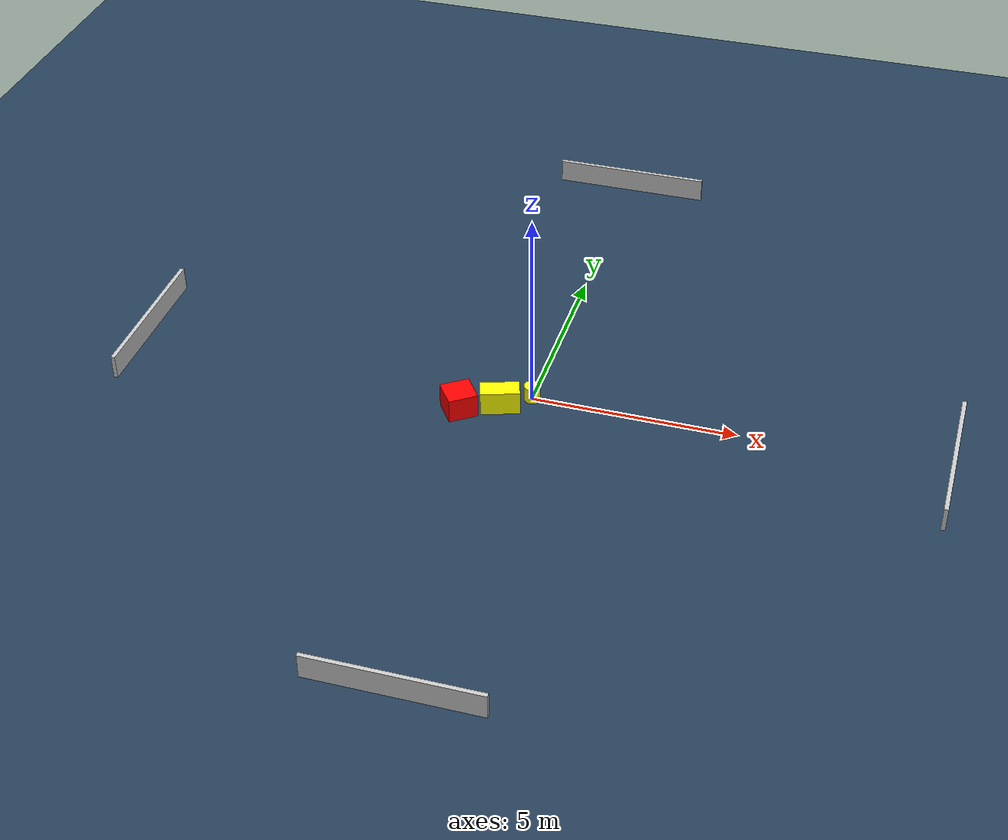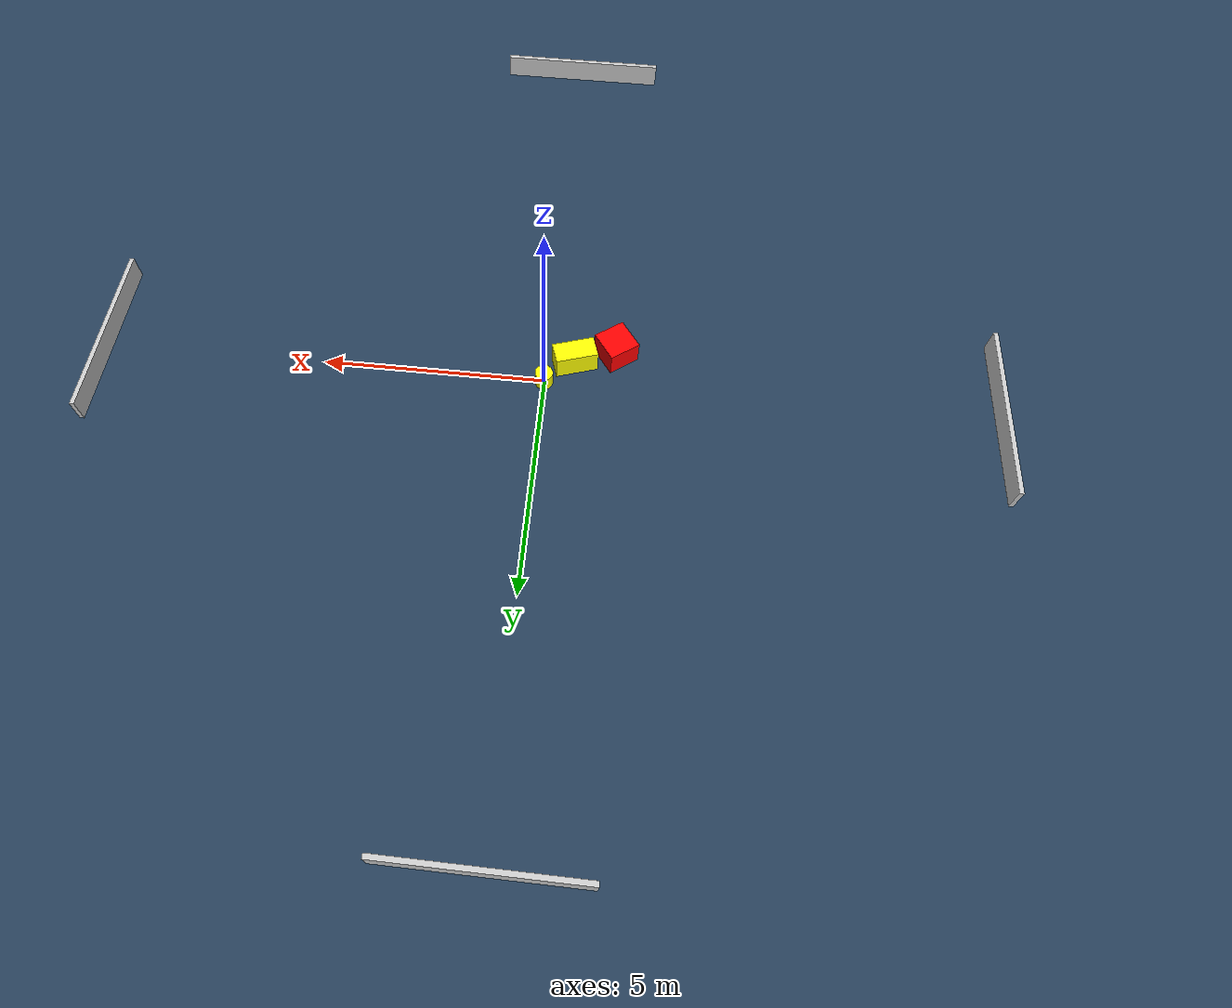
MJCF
<?xml version="1.0" ?>
<mujoco model="generated_environment">
  <option timestep="0.01" integrator="RK4" cone="elliptic"/>
  <default>
    <geom density="1"/>
  </default>
  <asset>
    <texture builtin="gradient" height="3072" name="skybox" rgb1="0.3 0.5 0.7" rgb2="0 0 0" type="skybox" width="512"/>
    <texture builtin="checker" height="300" name="groundplane" rgb1="0.2 0.3 0.4" rgb2="0.1 0.2 0.3" type="2d" width="300"/>
    <material name="groundplane" reflectance="0.2" texrepeat="5 5" texture="groundplane"/>
  </asset>
  <worldbody>
    <light dir="0 0 -1" directional="true" pos="0 0 1.5"/>
    <geom condim="3" friction="0.5 0.005 0.001" material="groundplane" name="floor" pos="0 0 0" size="0 0 0.05" type="plane"/>
    <body name="walls">
      <geom name="wall_1" condim="4" pos="-10.0 0.0 0.3" rgba="0.800000011920929 0.800000011920929 0.800000011920929 1.0" size="0.05 2.0 0.3" type="box"/>
      <geom name="wall_2" condim="4" pos="10.0 0.0 0.3" rgba="0.800000011920929 0.800000011920929 0.800000011920929 1.0" size="0.05 2.0 0.3" type="box"/>
      <geom name="wall_3" condim="4" pos="0.0 -10.0 0.3" rgba="0.800000011920929 0.800000011920929 0.800000011920929 1.0" size="2.0 0.05 0.3" type="box"/>
      <geom name="wall_4" condim="4" pos="0.0 10.0 0.3" rgba="0.800000011920929 0.800000011920929 0.800000011920929 1.0" size="2.0 0.05 0.3" type="box"/>
    </body>
    <body name="robot">
      <joint name="joint_x" type="slide" pos="0 0 0" axis="1 0 0"/>
      <joint name="joint_y" type="slide" pos="0 0 0" axis="0 1 0"/>
      <geom name="robot" type="cylinder" pos="0.0 0.0 0.2" size="0.2 0.2 0.0" mass="5.0" friction="1.0 0.005 0.0001" condim="4" rgba="1.0 1.0 0.0 1.0"/>
    </body>
    <body name="obstacle_1_movable">
      <geom name="obstacle_1_movable" condim="4" pos="-0.638457323867749 -0.5517178653610593 0.3" euler="0 0 18.05641206772085" friction="0.0 0.005 0.001" rgba="1.0 1.0 0.0 1.0" size="0.47449742144679424 0.23795977358527892 0.3" type="box" mass="0.1"/>
      <joint type="free"/>
    </body>
    <body name="obstacle_2_static">
      <geom name="obstacle_2_static" condim="4" pos="-1.549929888096107 -0.904393497488444 0.3" euler="0 0 35.484516886316996" friction="0.0 0.005 0.001" rgba="1.0 0.0 0.0 1.0" size="0.3620783102117927 0.3575139518390401 0.3" type="box"/>
    </body>
  </worldbody>
  <actuator>
    <motor name="actuator_x" joint="joint_x" gear="1" ctrlrange="-1 1"/>
    <motor name="actuator_y" joint="joint_y" gear="1" ctrlrange="-1 1"/>
  </actuator>
</mujoco>
